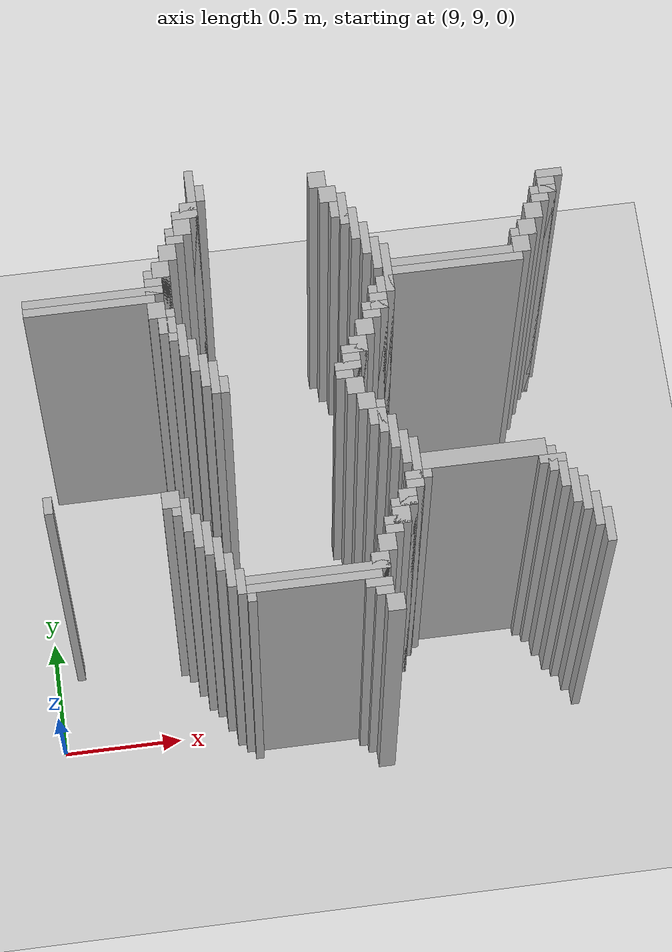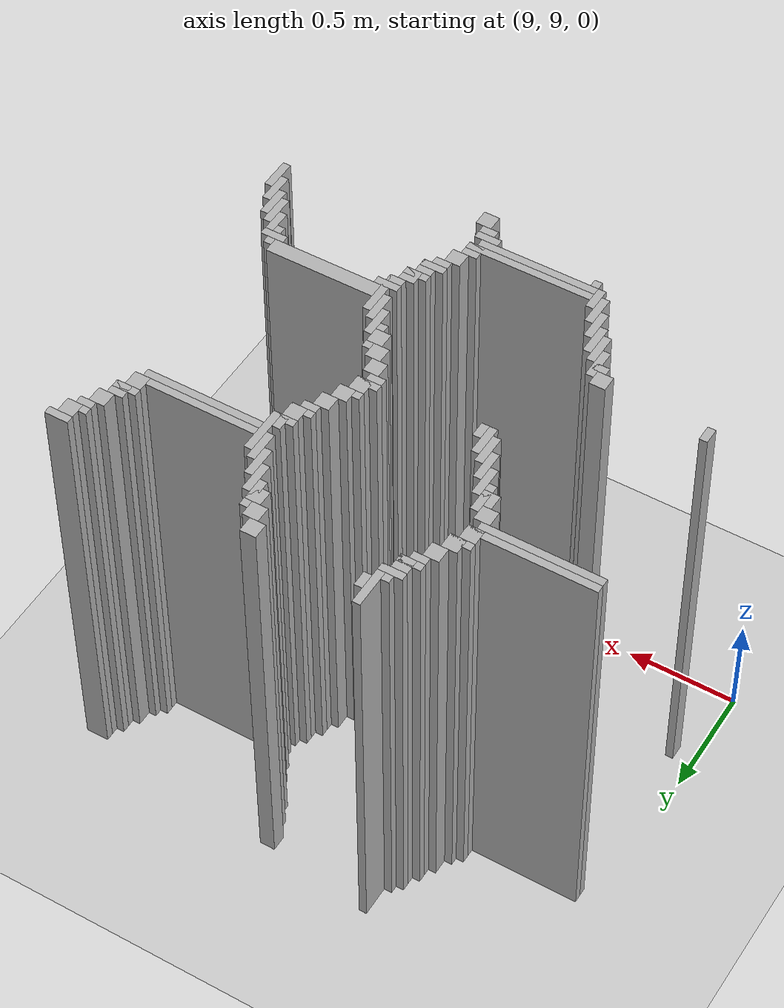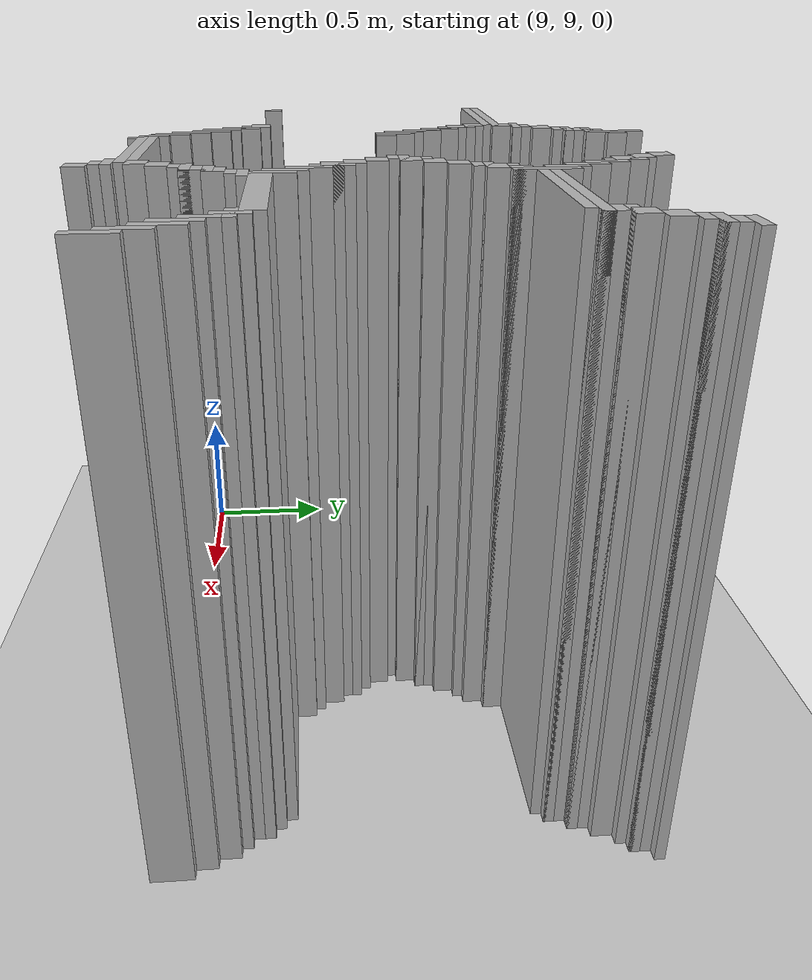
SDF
<sdf version="1.6">
 <world name="slam_world">
  <model name="ground_plane">
   <static>true</static>
   <link name="link">
    <collision name="collision">
     <geometry><plane><normal>0 0 1</normal><size>100 100</size></plane></geometry>
    </collision>
    <visual name="visual">
     <geometry><plane><normal>0 0 1</normal><size>100 100</size></plane></geometry>
     <material>
      <ambient>0.8 0.8 0.8 1</ambient>
      <diffuse>0.8 0.8 0.8 1</diffuse>
      <specular>0.8 0.8 0.8 1</specular>
     </material>
    </visual>
   </link>
  </model>
  <model name="wall_2202">
   <static>true</static>
   <pose>9.796983758700696 10.614849187935034 1.0 0 0 0</pose>
   <link name="link">
    <collision name="collision">
     <geometry><box><size>0.03480278422273782 0.2088167053364269 2.0</size></box></geometry>
    </collision>
    <visual name="visual">
     <geometry><box><size>0.03480278422273782 0.2088167053364269 2.0</size></box></geometry>
     <material><ambient>0.5 0.5 0.5 1</ambient><diffuse>0.7 0.7 0.7 1</diffuse></material>
    </visual>
   </link>
  </model>
  <model name="wall_2227">
   <static>true</static>
   <pose>9.831786542923433 10.614849187935034 1.0 0 0 0</pose>
   <link name="link">
    <collision name="collision">
     <geometry><box><size>0.03480278422273782 0.06960556844547564 2.0</size></box></geometry>
    </collision>
    <visual name="visual">
     <geometry><box><size>0.03480278422273782 0.06960556844547564 2.0</size></box></geometry>
     <material><ambient>0.5 0.5 0.5 1</ambient><diffuse>0.7 0.7 0.7 1</diffuse></material>
    </visual>
   </link>
  </model>
  <model name="wall_2228">
   <static>true</static>
   <pose>10.301624129930394 10.614849187935034 1.0 0 0 0</pose>
   <link name="link">
    <collision name="collision">
     <geometry><box><size>0.06960556844547564 0.06960556844547564 2.0</size></box></geometry>
    </collision>
    <visual name="visual">
     <geometry><box><size>0.06960556844547564 0.06960556844547564 2.0</size></box></geometry>
     <material><ambient>0.5 0.5 0.5 1</ambient><diffuse>0.7 0.7 0.7 1</diffuse></material>
    </visual>
   </link>
  </model>
  <model name="wall_2246">
   <static>true</static>
   <pose>9.779582366589327 10.54524361948956 1.0 0 0 0</pose>
   <link name="link">
    <collision name="collision">
     <geometry><box><size>0.06960556844547564 0.06960556844547564 2.0</size></box></geometry>
    </collision>
    <visual name="visual">
     <geometry><box><size>0.06960556844547564 0.06960556844547564 2.0</size></box></geometry>
     <material><ambient>0.5 0.5 0.5 1</ambient><diffuse>0.7 0.7 0.7 1</diffuse></material>
    </visual>
   </link>
  </model>
  <model name="wall_2247">
   <static>true</static>
   <pose>10.336426914153131 10.54524361948956 1.0 0 0 0</pose>
   <link name="link">
    <collision name="collision">
     <geometry><box><size>0.06960556844547564 0.06960556844547564 2.0</size></box></geometry>
    </collision>
    <visual name="visual">
     <geometry><box><size>0.06960556844547564 0.06960556844547564 2.0</size></box></geometry>
     <material><ambient>0.5 0.5 0.5 1</ambient><diffuse>0.7 0.7 0.7 1</diffuse></material>
    </visual>
   </link>
  </model>
  <model name="wall_2263">
   <static>true</static>
   <pose>9.762180974477959 10.52784222737819 1.0 0 0 0</pose>
   <link name="link">
    <collision name="collision">
     <geometry><box><size>0.10440835266821345 0.03480278422273782 2.0</size></box></geometry>
    </collision>
    <visual name="visual">
     <geometry><box><size>0.10440835266821345 0.03480278422273782 2.0</size></box></geometry>
     <material><ambient>0.5 0.5 0.5 1</ambient><diffuse>0.7 0.7 0.7 1</diffuse></material>
    </visual>
   </link>
  </model>
  <model name="wall_2264">
   <static>true</static>
   <pose>10.38863109048724 10.475638051044083 1.0 0 0 0</pose>
   <link name="link">
    <collision name="collision">
     <geometry><box><size>0.03480278422273782 0.13921113689095127 2.0</size></box></geometry>
    </collision>
    <visual name="visual">
     <geometry><box><size>0.03480278422273782 0.13921113689095127 2.0</size></box></geometry>
     <material><ambient>0.5 0.5 0.5 1</ambient><diffuse>0.7 0.7 0.7 1</diffuse></material>
    </visual>
   </link>
  </model>
  <model name="wall_2265">
   <static>true</static>
   <pose>11.223897911832946 10.52784222737819 1.0 0 0 0</pose>
   <link name="link">
    <collision name="collision">
     <geometry><box><size>0.10440835266821345 0.03480278422273782 2.0</size></box></geometry>
    </collision>
    <visual name="visual">
     <geometry><box><size>0.10440835266821345 0.03480278422273782 2.0</size></box></geometry>
     <material><ambient>0.5 0.5 0.5 1</ambient><diffuse>0.7 0.7 0.7 1</diffuse></material>
    </visual>
   </link>
  </model>
  <model name="wall_2280">
   <static>true</static>
   <pose>9.744779582366588 10.475638051044083 1.0 0 0 0</pose>
   <link name="link">
    <collision name="collision">
     <geometry><box><size>0.06960556844547564 0.06960556844547564 2.0</size></box></geometry>
    </collision>
    <visual name="visual">
     <geometry><box><size>0.06960556844547564 0.06960556844547564 2.0</size></box></geometry>
     <material><ambient>0.5 0.5 0.5 1</ambient><diffuse>0.7 0.7 0.7 1</diffuse></material>
    </visual>
   </link>
  </model>
  <model name="wall_2281">
   <static>true</static>
   <pose>10.37122969837587 10.475638051044083 1.0 0 0 0</pose>
   <link name="link">
    <collision name="collision">
     <geometry><box><size>0.06960556844547564 0.06960556844547564 2.0</size></box></geometry>
    </collision>
    <visual name="visual">
     <geometry><box><size>0.06960556844547564 0.06960556844547564 2.0</size></box></geometry>
     <material><ambient>0.5 0.5 0.5 1</ambient><diffuse>0.7 0.7 0.7 1</diffuse></material>
    </visual>
   </link>
  </model>
  <model name="wall_2282">
   <static>true</static>
   <pose>11.206496519721577 10.475638051044083 1.0 0 0 0</pose>
   <link name="link">
    <collision name="collision">
     <geometry><box><size>0.06960556844547564 0.06960556844547564 2.0</size></box></geometry>
    </collision>
    <visual name="visual">
     <geometry><box><size>0.06960556844547564 0.06960556844547564 2.0</size></box></geometry>
     <material><ambient>0.5 0.5 0.5 1</ambient><diffuse>0.7 0.7 0.7 1</diffuse></material>
    </visual>
   </link>
  </model>
  <model name="wall_2297">
   <static>true</static>
   <pose>9.72737819025522 10.458236658932714 1.0 0 0 0</pose>
   <link name="link">
    <collision name="collision">
     <geometry><box><size>0.10440835266821345 0.03480278422273782 2.0</size></box></geometry>
    </collision>
    <visual name="visual">
     <geometry><box><size>0.10440835266821345 0.03480278422273782 2.0</size></box></geometry>
     <material><ambient>0.5 0.5 0.5 1</ambient><diffuse>0.7 0.7 0.7 1</diffuse></material>
    </visual>
   </link>
  </model>
  <model name="wall_2298">
   <static>true</static>
   <pose>10.423433874709977 10.406032482598608 1.0 0 0 0</pose>
   <link name="link">
    <collision name="collision">
     <geometry><box><size>0.03480278422273782 0.13921113689095127 2.0</size></box></geometry>
    </collision>
    <visual name="visual">
     <geometry><box><size>0.03480278422273782 0.13921113689095127 2.0</size></box></geometry>
     <material><ambient>0.5 0.5 0.5 1</ambient><diffuse>0.7 0.7 0.7 1</diffuse></material>
    </visual>
   </link>
  </model>
  <model name="wall_2299">
   <static>true</static>
   <pose>11.189095127610209 10.458236658932714 1.0 0 0 0</pose>
   <link name="link">
    <collision name="collision">
     <geometry><box><size>0.10440835266821345 0.03480278422273782 2.0</size></box></geometry>
    </collision>
    <visual name="visual">
     <geometry><box><size>0.10440835266821345 0.03480278422273782 2.0</size></box></geometry>
     <material><ambient>0.5 0.5 0.5 1</ambient><diffuse>0.7 0.7 0.7 1</diffuse></material>
    </visual>
   </link>
  </model>
  <model name="wall_2308">
   <static>true</static>
   <pose>9.70997679814385 10.423433874709977 1.0 0 0 0</pose>
   <link name="link">
    <collision name="collision">
     <geometry><box><size>0.06960556844547564 0.03480278422273782 2.0</size></box></geometry>
    </collision>
    <visual name="visual">
     <geometry><box><size>0.06960556844547564 0.03480278422273782 2.0</size></box></geometry>
     <material><ambient>0.5 0.5 0.5 1</ambient><diffuse>0.7 0.7 0.7 1</diffuse></material>
    </visual>
   </link>
  </model>
  <model name="wall_2309">
   <static>true</static>
   <pose>11.17169373549884 10.423433874709977 1.0 0 0 0</pose>
   <link name="link">
    <collision name="collision">
     <geometry><box><size>0.06960556844547564 0.03480278422273782 2.0</size></box></geometry>
    </collision>
    <visual name="visual">
     <geometry><box><size>0.06960556844547564 0.03480278422273782 2.0</size></box></geometry>
     <material><ambient>0.5 0.5 0.5 1</ambient><diffuse>0.7 0.7 0.7 1</diffuse></material>
    </visual>
   </link>
  </model>
  <model name="wall_2322">
   <static>true</static>
   <pose>9.675174013921113 10.37122969837587 1.0 0 0 0</pose>
   <link name="link">
    <collision name="collision">
     <geometry><box><size>0.06960556844547564 0.06960556844547564 2.0</size></box></geometry>
    </collision>
    <visual name="visual">
     <geometry><box><size>0.06960556844547564 0.06960556844547564 2.0</size></box></geometry>
     <material><ambient>0.5 0.5 0.5 1</ambient><diffuse>0.7 0.7 0.7 1</diffuse></material>
    </visual>
   </link>
  </model>
  <model name="wall_2323">
   <static>true</static>
   <pose>10.458236658932714 10.336426914153131 1.0 0 0 0</pose>
   <link name="link">
    <collision name="collision">
     <geometry><box><size>0.03480278422273782 0.13921113689095127 2.0</size></box></geometry>
    </collision>
    <visual name="visual">
     <geometry><box><size>0.03480278422273782 0.13921113689095127 2.0</size></box></geometry>
     <material><ambient>0.5 0.5 0.5 1</ambient><diffuse>0.7 0.7 0.7 1</diffuse></material>
    </visual>
   </link>
  </model>
  <model name="wall_2324">
   <static>true</static>
   <pose>11.1368909512761 10.37122969837587 1.0 0 0 0</pose>
   <link name="link">
    <collision name="collision">
     <geometry><box><size>0.06960556844547564 0.06960556844547564 2.0</size></box></geometry>
    </collision>
    <visual name="visual">
     <geometry><box><size>0.06960556844547564 0.06960556844547564 2.0</size></box></geometry>
     <material><ambient>0.5 0.5 0.5 1</ambient><diffuse>0.7 0.7 0.7 1</diffuse></material>
    </visual>
   </link>
  </model>
  <model name="wall_2339">
   <static>true</static>
   <pose>9.640371229698376 10.301624129930394 1.0 0 0 0</pose>
   <link name="link">
    <collision name="collision">
     <geometry><box><size>0.06960556844547564 0.06960556844547564 2.0</size></box></geometry>
    </collision>
    <visual name="visual">
     <geometry><box><size>0.06960556844547564 0.06960556844547564 2.0</size></box></geometry>
     <material><ambient>0.5 0.5 0.5 1</ambient><diffuse>0.7 0.7 0.7 1</diffuse></material>
    </visual>
   </link>
  </model>
  <model name="wall_2340">
   <static>true</static>
   <pose>10.493039443155451 10.266821345707656 1.0 0 0 0</pose>
   <link name="link">
    <collision name="collision">
     <geometry><box><size>0.03480278422273782 0.13921113689095127 2.0</size></box></geometry>
    </collision>
    <visual name="visual">
     <geometry><box><size>0.03480278422273782 0.13921113689095127 2.0</size></box></geometry>
     <material><ambient>0.5 0.5 0.5 1</ambient><diffuse>0.7 0.7 0.7 1</diffuse></material>
    </visual>
   </link>
  </model>
  <model name="wall_2341">
   <static>true</static>
   <pose>11.102088167053363 10.301624129930394 1.0 0 0 0</pose>
   <link name="link">
    <collision name="collision">
     <geometry><box><size>0.06960556844547564 0.06960556844547564 2.0</size></box></geometry>
    </collision>
    <visual name="visual">
     <geometry><box><size>0.06960556844547564 0.06960556844547564 2.0</size></box></geometry>
     <material><ambient>0.5 0.5 0.5 1</ambient><diffuse>0.7 0.7 0.7 1</diffuse></material>
    </visual>
   </link>
  </model>
  <model name="wall_2356">
   <static>true</static>
   <pose>9.622969837587007 10.284222737819025 1.0 0 0 0</pose>
   <link name="link">
    <collision name="collision">
     <geometry><box><size>0.10440835266821345 0.03480278422273782 2.0</size></box></geometry>
    </collision>
    <visual name="visual">
     <geometry><box><size>0.10440835266821345 0.03480278422273782 2.0</size></box></geometry>
     <material><ambient>0.5 0.5 0.5 1</ambient><diffuse>0.7 0.7 0.7 1</diffuse></material>
    </visual>
   </link>
  </model>
  <model name="wall_2357">
   <static>true</static>
   <pose>10.52784222737819 10.19721577726218 1.0 0 0 0</pose>
   <link name="link">
    <collision name="collision">
     <geometry><box><size>0.03480278422273782 0.2088167053364269 2.0</size></box></geometry>
    </collision>
    <visual name="visual">
     <geometry><box><size>0.03480278422273782 0.2088167053364269 2.0</size></box></geometry>
     <material><ambient>0.5 0.5 0.5 1</ambient><diffuse>0.7 0.7 0.7 1</diffuse></material>
    </visual>
   </link>
  </model>
  <model name="wall_2358">
   <static>true</static>
   <pose>11.084686774941995 10.284222737819025 1.0 0 0 0</pose>
   <link name="link">
    <collision name="collision">
     <geometry><box><size>0.10440835266821345 0.03480278422273782 2.0</size></box></geometry>
    </collision>
    <visual name="visual">
     <geometry><box><size>0.10440835266821345 0.03480278422273782 2.0</size></box></geometry>
     <material><ambient>0.5 0.5 0.5 1</ambient><diffuse>0.7 0.7 0.7 1</diffuse></material>
    </visual>
   </link>
  </model>
  <model name="wall_2367">
   <static>true</static>
   <pose>9.605568445475638 10.232018561484919 1.0 0 0 0</pose>
   <link name="link">
    <collision name="collision">
     <geometry><box><size>0.06960556844547564 0.06960556844547564 2.0</size></box></geometry>
    </collision>
    <visual name="visual">
     <geometry><box><size>0.06960556844547564 0.06960556844547564 2.0</size></box></geometry>
     <material><ambient>0.5 0.5 0.5 1</ambient><diffuse>0.7 0.7 0.7 1</diffuse></material>
    </visual>
   </link>
  </model>
  <model name="wall_2368">
   <static>true</static>
   <pose>11.067285382830626 10.232018561484919 1.0 0 0 0</pose>
   <link name="link">
    <collision name="collision">
     <geometry><box><size>0.06960556844547564 0.06960556844547564 2.0</size></box></geometry>
    </collision>
    <visual name="visual">
     <geometry><box><size>0.06960556844547564 0.06960556844547564 2.0</size></box></geometry>
     <material><ambient>0.5 0.5 0.5 1</ambient><diffuse>0.7 0.7 0.7 1</diffuse></material>
    </visual>
   </link>
  </model>
  <model name="wall_2377">
   <static>true</static>
   <pose>9.361948955916473 10.214617169373549 1.0 0 0 0</pose>
   <link name="link">
    <collision name="collision">
     <geometry><box><size>0.5568445475638051 0.03480278422273782 2.0</size></box></geometry>
    </collision>
    <visual name="visual">
     <geometry><box><size>0.5568445475638051 0.03480278422273782 2.0</size></box></geometry>
     <material><ambient>0.5 0.5 0.5 1</ambient><diffuse>0.7 0.7 0.7 1</diffuse></material>
    </visual>
   </link>
  </model>
  <model name="wall_2378">
   <static>true</static>
   <pose>10.82366589327146 10.214617169373549 1.0 0 0 0</pose>
   <link name="link">
    <collision name="collision">
     <geometry><box><size>0.5568445475638051 0.03480278422273782 2.0</size></box></geometry>
    </collision>
    <visual name="visual">
     <geometry><box><size>0.5568445475638051 0.03480278422273782 2.0</size></box></geometry>
     <material><ambient>0.5 0.5 0.5 1</ambient><diffuse>0.7 0.7 0.7 1</diffuse></material>
    </visual>
   </link>
  </model>
  <model name="wall_2388">
   <static>true</static>
   <pose>9.344547563805104 10.179814385150811 1.0 0 0 0</pose>
   <link name="link">
    <collision name="collision">
     <geometry><box><size>0.5220417633410672 0.03480278422273782 2.0</size></box></geometry>
    </collision>
    <visual name="visual">
     <geometry><box><size>0.5220417633410672 0.03480278422273782 2.0</size></box></geometry>
     <material><ambient>0.5 0.5 0.5 1</ambient><diffuse>0.7 0.7 0.7 1</diffuse></material>
    </visual>
   </link>
  </model>
  <model name="wall_2389">
   <static>true</static>
   <pose>10.806264501160092 10.179814385150811 1.0 0 0 0</pose>
   <link name="link">
    <collision name="collision">
     <geometry><box><size>0.5220417633410672 0.03480278422273782 2.0</size></box></geometry>
    </collision>
    <visual name="visual">
     <geometry><box><size>0.5220417633410672 0.03480278422273782 2.0</size></box></geometry>
     <material><ambient>0.5 0.5 0.5 1</ambient><diffuse>0.7 0.7 0.7 1</diffuse></material>
    </visual>
   </link>
  </model>
  <model name="wall_2400">
   <static>true</static>
   <pose>9.605568445475638 10.127610208816705 1.0 0 0 0</pose>
   <link name="link">
    <collision name="collision">
     <geometry><box><size>0.06960556844547564 0.06960556844547564 2.0</size></box></geometry>
    </collision>
    <visual name="visual">
     <geometry><box><size>0.06960556844547564 0.06960556844547564 2.0</size></box></geometry>
     <material><ambient>0.5 0.5 0.5 1</ambient><diffuse>0.7 0.7 0.7 1</diffuse></material>
    </visual>
   </link>
  </model>
  <model name="wall_2401">
   <static>true</static>
   <pose>10.51044083526682 10.127610208816705 1.0 0 0 0</pose>
   <link name="link">
    <collision name="collision">
     <geometry><box><size>0.06960556844547564 0.06960556844547564 2.0</size></box></geometry>
    </collision>
    <visual name="visual">
     <geometry><box><size>0.06960556844547564 0.06960556844547564 2.0</size></box></geometry>
     <material><ambient>0.5 0.5 0.5 1</ambient><diffuse>0.7 0.7 0.7 1</diffuse></material>
    </visual>
   </link>
  </model>
  <model name="wall_2416">
   <static>true</static>
   <pose>9.657772621809745 10.058004640371228 1.0 0 0 0</pose>
   <link name="link">
    <collision name="collision">
     <geometry><box><size>0.03480278422273782 0.13921113689095127 2.0</size></box></geometry>
    </collision>
    <visual name="visual">
     <geometry><box><size>0.03480278422273782 0.13921113689095127 2.0</size></box></geometry>
     <material><ambient>0.5 0.5 0.5 1</ambient><diffuse>0.7 0.7 0.7 1</diffuse></material>
    </visual>
   </link>
  </model>
  <model name="wall_2417">
   <static>true</static>
   <pose>10.493039443155451 10.110208816705336 1.0 0 0 0</pose>
   <link name="link">
    <collision name="collision">
     <geometry><box><size>0.10440835266821345 0.03480278422273782 2.0</size></box></geometry>
    </collision>
    <visual name="visual">
     <geometry><box><size>0.10440835266821345 0.03480278422273782 2.0</size></box></geometry>
     <material><ambient>0.5 0.5 0.5 1</ambient><diffuse>0.7 0.7 0.7 1</diffuse></material>
    </visual>
   </link>
  </model>
  <model name="wall_2432">
   <static>true</static>
   <pose>9.640371229698376 10.058004640371228 1.0 0 0 0</pose>
   <link name="link">
    <collision name="collision">
     <geometry><box><size>0.06960556844547564 0.06960556844547564 2.0</size></box></geometry>
    </collision>
    <visual name="visual">
     <geometry><box><size>0.06960556844547564 0.06960556844547564 2.0</size></box></geometry>
     <material><ambient>0.5 0.5 0.5 1</ambient><diffuse>0.7 0.7 0.7 1</diffuse></material>
    </visual>
   </link>
  </model>
  <model name="wall_2433">
   <static>true</static>
   <pose>10.475638051044083 10.058004640371228 1.0 0 0 0</pose>
   <link name="link">
    <collision name="collision">
     <geometry><box><size>0.06960556844547564 0.06960556844547564 2.0</size></box></geometry>
    </collision>
    <visual name="visual">
     <geometry><box><size>0.06960556844547564 0.06960556844547564 2.0</size></box></geometry>
     <material><ambient>0.5 0.5 0.5 1</ambient><diffuse>0.7 0.7 0.7 1</diffuse></material>
    </visual>
   </link>
  </model>
  <model name="wall_2448">
   <static>true</static>
   <pose>9.692575406032482 9.988399071925754 1.0 0 0 0</pose>
   <link name="link">
    <collision name="collision">
     <geometry><box><size>0.03480278422273782 0.13921113689095127 2.0</size></box></geometry>
    </collision>
    <visual name="visual">
     <geometry><box><size>0.03480278422273782 0.13921113689095127 2.0</size></box></geometry>
     <material><ambient>0.5 0.5 0.5 1</ambient><diffuse>0.7 0.7 0.7 1</diffuse></material>
    </visual>
   </link>
  </model>
  <model name="wall_2449">
   <static>true</static>
   <pose>10.458236658932714 10.04060324825986 1.0 0 0 0</pose>
   <link name="link">
    <collision name="collision">
     <geometry><box><size>0.10440835266821345 0.03480278422273782 2.0</size></box></geometry>
    </collision>
    <visual name="visual">
     <geometry><box><size>0.10440835266821345 0.03480278422273782 2.0</size></box></geometry>
     <material><ambient>0.5 0.5 0.5 1</ambient><diffuse>0.7 0.7 0.7 1</diffuse></material>
    </visual>
   </link>
  </model>
  <model name="wall_2460">
   <static>true</static>
   <pose>10.440835266821345 10.005800464037122 1.0 0 0 0</pose>
   <link name="link">
    <collision name="collision">
     <geometry><box><size>0.06960556844547564 0.03480278422273782 2.0</size></box></geometry>
    </collision>
    <visual name="visual">
     <geometry><box><size>0.06960556844547564 0.03480278422273782 2.0</size></box></geometry>
     <material><ambient>0.5 0.5 0.5 1</ambient><diffuse>0.7 0.7 0.7 1</diffuse></material>
    </visual>
   </link>
  </model>
  <model name="wall_2473">
   <static>true</static>
   <pose>9.72737819025522 9.918793503480279 1.0 0 0 0</pose>
   <link name="link">
    <collision name="collision">
     <geometry><box><size>0.03480278422273782 0.13921113689095127 2.0</size></box></geometry>
    </collision>
    <visual name="visual">
     <geometry><box><size>0.03480278422273782 0.13921113689095127 2.0</size></box></geometry>
     <material><ambient>0.5 0.5 0.5 1</ambient><diffuse>0.7 0.7 0.7 1</diffuse></material>
    </visual>
   </link>
  </model>
  <model name="wall_2474">
   <static>true</static>
   <pose>10.406032482598608 9.953596287703016 1.0 0 0 0</pose>
   <link name="link">
    <collision name="collision">
     <geometry><box><size>0.06960556844547564 0.06960556844547564 2.0</size></box></geometry>
    </collision>
    <visual name="visual">
     <geometry><box><size>0.06960556844547564 0.06960556844547564 2.0</size></box></geometry>
     <material><ambient>0.5 0.5 0.5 1</ambient><diffuse>0.7 0.7 0.7 1</diffuse></material>
    </visual>
   </link>
  </model>
  <model name="wall_2489">
   <static>true</static>
   <pose>9.762180974477959 9.849187935034802 1.0 0 0 0</pose>
   <link name="link">
    <collision name="collision">
     <geometry><box><size>0.03480278422273782 0.13921113689095127 2.0</size></box></geometry>
    </collision>
    <visual name="visual">
     <geometry><box><size>0.03480278422273782 0.13921113689095127 2.0</size></box></geometry>
     <material><ambient>0.5 0.5 0.5 1</ambient><diffuse>0.7 0.7 0.7 1</diffuse></material>
    </visual>
   </link>
  </model>
  <model name="wall_2490">
   <static>true</static>
   <pose>10.37122969837587 9.88399071925754 1.0 0 0 0</pose>
   <link name="link">
    <collision name="collision">
     <geometry><box><size>0.06960556844547564 0.06960556844547564 2.0</size></box></geometry>
    </collision>
    <visual name="visual">
     <geometry><box><size>0.06960556844547564 0.06960556844547564 2.0</size></box></geometry>
     <material><ambient>0.5 0.5 0.5 1</ambient><diffuse>0.7 0.7 0.7 1</diffuse></material>
    </visual>
   </link>
  </model>
  <model name="wall_2505">
   <static>true</static>
   <pose>9.796983758700696 9.814385150812065 1.0 0 0 0</pose>
   <link name="link">
    <collision name="collision">
     <geometry><box><size>0.03480278422273782 0.13921113689095127 2.0</size></box></geometry>
    </collision>
    <visual name="visual">
     <geometry><box><size>0.03480278422273782 0.13921113689095127 2.0</size></box></geometry>
     <material><ambient>0.5 0.5 0.5 1</ambient><diffuse>0.7 0.7 0.7 1</diffuse></material>
    </visual>
   </link>
  </model>
  <model name="wall_2506">
   <static>true</static>
   <pose>10.3538283062645 9.86658932714617 1.0 0 0 0</pose>
   <link name="link">
    <collision name="collision">
     <geometry><box><size>0.10440835266821345 0.03480278422273782 2.0</size></box></geometry>
    </collision>
    <visual name="visual">
     <geometry><box><size>0.10440835266821345 0.03480278422273782 2.0</size></box></geometry>
     <material><ambient>0.5 0.5 0.5 1</ambient><diffuse>0.7 0.7 0.7 1</diffuse></material>
    </visual>
   </link>
  </model>
  <model name="wall_2517">
   <static>true</static>
   <pose>10.336426914153131 9.814385150812065 1.0 0 0 0</pose>
   <link name="link">
    <collision name="collision">
     <geometry><box><size>0.06960556844547564 0.06960556844547564 2.0</size></box></geometry>
    </collision>
    <visual name="visual">
     <geometry><box><size>0.06960556844547564 0.06960556844547564 2.0</size></box></geometry>
     <material><ambient>0.5 0.5 0.5 1</ambient><diffuse>0.7 0.7 0.7 1</diffuse></material>
    </visual>
   </link>
  </model>
  <model name="wall_2528">
   <static>true</static>
   <pose>9.831786542923433 9.779582366589327 1.0 0 0 0</pose>
   <link name="link">
    <collision name="collision">
     <geometry><box><size>0.03480278422273782 0.06960556844547564 2.0</size></box></geometry>
    </collision>
    <visual name="visual">
     <geometry><box><size>0.03480278422273782 0.06960556844547564 2.0</size></box></geometry>
     <material><ambient>0.5 0.5 0.5 1</ambient><diffuse>0.7 0.7 0.7 1</diffuse></material>
    </visual>
   </link>
  </model>
  <model name="wall_2529">
   <static>true</static>
   <pose>10.319025522041763 9.796983758700696 1.0 0 0 0</pose>
   <link name="link">
    <collision name="collision">
     <geometry><box><size>0.10440835266821345 0.03480278422273782 2.0</size></box></geometry>
    </collision>
    <visual name="visual">
     <geometry><box><size>0.10440835266821345 0.03480278422273782 2.0</size></box></geometry>
     <material><ambient>0.5 0.5 0.5 1</ambient><diffuse>0.7 0.7 0.7 1</diffuse></material>
    </visual>
   </link>
  </model>
  <model name="wall_2540">
   <static>true</static>
   <pose>10.301624129930394 9.762180974477959 1.0 0 0 0</pose>
   <link name="link">
    <collision name="collision">
     <geometry><box><size>0.06960556844547564 0.03480278422273782 2.0</size></box></geometry>
    </collision>
    <visual name="visual">
     <geometry><box><size>0.06960556844547564 0.03480278422273782 2.0</size></box></geometry>
     <material><ambient>0.5 0.5 0.5 1</ambient><diffuse>0.7 0.7 0.7 1</diffuse></material>
    </visual>
   </link>
  </model>
  <model name="wall_2549">
   <static>true</static>
   <pose>10.336426914153131 9.70997679814385 1.0 0 0 0</pose>
   <link name="link">
    <collision name="collision">
     <geometry><box><size>0.06960556844547564 0.06960556844547564 2.0</size></box></geometry>
    </collision>
    <visual name="visual">
     <geometry><box><size>0.06960556844547564 0.06960556844547564 2.0</size></box></geometry>
     <material><ambient>0.5 0.5 0.5 1</ambient><diffuse>0.7 0.7 0.7 1</diffuse></material>
    </visual>
   </link>
  </model>
  <model name="wall_2566">
   <static>true</static>
   <pose>10.37122969837587 9.640371229698376 1.0 0 0 0</pose>
   <link name="link">
    <collision name="collision">
     <geometry><box><size>0.06960556844547564 0.06960556844547564 2.0</size></box></geometry>
    </collision>
    <visual name="visual">
     <geometry><box><size>0.06960556844547564 0.06960556844547564 2.0</size></box></geometry>
     <material><ambient>0.5 0.5 0.5 1</ambient><diffuse>0.7 0.7 0.7 1</diffuse></material>
    </visual>
   </link>
  </model>
  <model name="wall_2577">
   <static>true</static>
   <pose>10.423433874709977 9.5707656612529 1.0 0 0 0</pose>
   <link name="link">
    <collision name="collision">
     <geometry><box><size>0.03480278422273782 0.13921113689095127 2.0</size></box></geometry>
    </collision>
    <visual name="visual">
     <geometry><box><size>0.03480278422273782 0.13921113689095127 2.0</size></box></geometry>
     <material><ambient>0.5 0.5 0.5 1</ambient><diffuse>0.7 0.7 0.7 1</diffuse></material>
    </visual>
   </link>
  </model>
  <model name="wall_2588">
   <static>true</static>
   <pose>10.406032482598608 9.5707656612529 1.0 0 0 0</pose>
   <link name="link">
    <collision name="collision">
     <geometry><box><size>0.06960556844547564 0.06960556844547564 2.0</size></box></geometry>
    </collision>
    <visual name="visual">
     <geometry><box><size>0.06960556844547564 0.06960556844547564 2.0</size></box></geometry>
     <material><ambient>0.5 0.5 0.5 1</ambient><diffuse>0.7 0.7 0.7 1</diffuse></material>
    </visual>
   </link>
  </model>
  <model name="wall_2599">
   <static>true</static>
   <pose>10.458236658932714 9.501160092807424 1.0 0 0 0</pose>
   <link name="link">
    <collision name="collision">
     <geometry><box><size>0.03480278422273782 0.13921113689095127 2.0</size></box></geometry>
    </collision>
    <visual name="visual">
     <geometry><box><size>0.03480278422273782 0.13921113689095127 2.0</size></box></geometry>
     <material><ambient>0.5 0.5 0.5 1</ambient><diffuse>0.7 0.7 0.7 1</diffuse></material>
    </visual>
   </link>
  </model>
  <model name="wall_2613">
   <static>true</static>
   <pose>10.493039443155451 9.431554524361948 1.0 0 0 0</pose>
   <link name="link">
    <collision name="collision">
     <geometry><box><size>0.03480278422273782 0.13921113689095127 2.0</size></box></geometry>
    </collision>
    <visual name="visual">
     <geometry><box><size>0.03480278422273782 0.13921113689095127 2.0</size></box></geometry>
     <material><ambient>0.5 0.5 0.5 1</ambient><diffuse>0.7 0.7 0.7 1</diffuse></material>
    </visual>
   </link>
  </model>
  <model name="wall_2624">
   <static>true</static>
   <pose>10.52784222737819 9.361948955916473 1.0 0 0 0</pose>
   <link name="link">
    <collision name="collision">
     <geometry><box><size>0.03480278422273782 0.2088167053364269 2.0</size></box></geometry>
    </collision>
    <visual name="visual">
     <geometry><box><size>0.03480278422273782 0.2088167053364269 2.0</size></box></geometry>
     <material><ambient>0.5 0.5 0.5 1</ambient><diffuse>0.7 0.7 0.7 1</diffuse></material>
    </visual>
   </link>
  </model>
  <model name="wall_2639">
   <static>true</static>
   <pose>9.100928074245939 9.361948955916473 1.0 0 0 0</pose>
   <link name="link">
    <collision name="collision">
     <geometry><box><size>0.03480278422273782 0.06960556844547564 2.0</size></box></geometry>
    </collision>
    <visual name="visual">
     <geometry><box><size>0.03480278422273782 0.06960556844547564 2.0</size></box></geometry>
     <material><ambient>0.5 0.5 0.5 1</ambient><diffuse>0.7 0.7 0.7 1</diffuse></material>
    </visual>
   </link>
  </model>
  <model name="wall_2640">
   <static>true</static>
   <pose>10.788863109048723 9.361948955916473 1.0 0 0 0</pose>
   <link name="link">
    <collision name="collision">
     <geometry><box><size>0.4872389791183295 0.06960556844547564 2.0</size></box></geometry>
    </collision>
    <visual name="visual">
     <geometry><box><size>0.4872389791183295 0.06960556844547564 2.0</size></box></geometry>
     <material><ambient>0.5 0.5 0.5 1</ambient><diffuse>0.7 0.7 0.7 1</diffuse></material>
    </visual>
   </link>
  </model>
  <model name="wall_2651">
   <static>true</static>
   <pose>9.5707656612529 9.327146171693736 1.0 0 0 0</pose>
   <link name="link">
    <collision name="collision">
     <geometry><box><size>0.06960556844547564 0.06960556844547564 2.0</size></box></geometry>
    </collision>
    <visual name="visual">
     <geometry><box><size>0.06960556844547564 0.06960556844547564 2.0</size></box></geometry>
     <material><ambient>0.5 0.5 0.5 1</ambient><diffuse>0.7 0.7 0.7 1</diffuse></material>
    </visual>
   </link>
  </model>
  <model name="wall_2652">
   <static>true</static>
   <pose>11.049883990719257 9.309744779582367 1.0 0 0 0</pose>
   <link name="link">
    <collision name="collision">
     <geometry><box><size>0.03480278422273782 0.10440835266821345 2.0</size></box></geometry>
    </collision>
    <visual name="visual">
     <geometry><box><size>0.03480278422273782 0.10440835266821345 2.0</size></box></geometry>
     <material><ambient>0.5 0.5 0.5 1</ambient><diffuse>0.7 0.7 0.7 1</diffuse></material>
    </visual>
   </link>
  </model>
  <model name="wall_2666">
   <static>true</static>
   <pose>9.622969837587007 9.257540603248259 1.0 0 0 0</pose>
   <link name="link">
    <collision name="collision">
     <geometry><box><size>0.03480278422273782 0.13921113689095127 2.0</size></box></geometry>
    </collision>
    <visual name="visual">
     <geometry><box><size>0.03480278422273782 0.13921113689095127 2.0</size></box></geometry>
     <material><ambient>0.5 0.5 0.5 1</ambient><diffuse>0.7 0.7 0.7 1</diffuse></material>
    </visual>
   </link>
  </model>
  <model name="wall_2667">
   <static>true</static>
   <pose>10.52784222737819 9.309744779582367 1.0 0 0 0</pose>
   <link name="link">
    <collision name="collision">
     <geometry><box><size>0.10440835266821345 0.03480278422273782 2.0</size></box></geometry>
    </collision>
    <visual name="visual">
     <geometry><box><size>0.10440835266821345 0.03480278422273782 2.0</size></box></geometry>
     <material><ambient>0.5 0.5 0.5 1</ambient><diffuse>0.7 0.7 0.7 1</diffuse></material>
    </visual>
   </link>
  </model>
  <model name="wall_2668">
   <static>true</static>
   <pose>11.049883990719257 9.309744779582367 1.0 0 0 0</pose>
   <link name="link">
    <collision name="collision">
     <geometry><box><size>0.10440835266821345 0.03480278422273782 2.0</size></box></geometry>
    </collision>
    <visual name="visual">
     <geometry><box><size>0.10440835266821345 0.03480278422273782 2.0</size></box></geometry>
     <material><ambient>0.5 0.5 0.5 1</ambient><diffuse>0.7 0.7 0.7 1</diffuse></material>
    </visual>
   </link>
  </model>
  <model name="wall_2681">
   <static>true</static>
   <pose>9.605568445475638 9.274941995359628 1.0 0 0 0</pose>
   <link name="link">
    <collision name="collision">
     <geometry><box><size>0.06960556844547564 0.03480278422273782 2.0</size></box></geometry>
    </collision>
    <visual name="visual">
     <geometry><box><size>0.06960556844547564 0.03480278422273782 2.0</size></box></geometry>
     <material><ambient>0.5 0.5 0.5 1</ambient><diffuse>0.7 0.7 0.7 1</diffuse></material>
    </visual>
   </link>
  </model>
  <model name="wall_2682">
   <static>true</static>
   <pose>10.51044083526682 9.274941995359628 1.0 0 0 0</pose>
   <link name="link">
    <collision name="collision">
     <geometry><box><size>0.06960556844547564 0.03480278422273782 2.0</size></box></geometry>
    </collision>
    <visual name="visual">
     <geometry><box><size>0.06960556844547564 0.03480278422273782 2.0</size></box></geometry>
     <material><ambient>0.5 0.5 0.5 1</ambient><diffuse>0.7 0.7 0.7 1</diffuse></material>
    </visual>
   </link>
  </model>
  <model name="wall_2683">
   <static>true</static>
   <pose>11.084686774941995 9.24013921113689 1.0 0 0 0</pose>
   <link name="link">
    <collision name="collision">
     <geometry><box><size>0.03480278422273782 0.10440835266821345 2.0</size></box></geometry>
    </collision>
    <visual name="visual">
     <geometry><box><size>0.03480278422273782 0.10440835266821345 2.0</size></box></geometry>
     <material><ambient>0.5 0.5 0.5 1</ambient><diffuse>0.7 0.7 0.7 1</diffuse></material>
    </visual>
   </link>
  </model>
  <model name="wall_2697">
   <static>true</static>
   <pose>9.657772621809745 9.187935034802784 1.0 0 0 0</pose>
   <link name="link">
    <collision name="collision">
     <geometry><box><size>0.03480278422273782 0.13921113689095127 2.0</size></box></geometry>
    </collision>
    <visual name="visual">
     <geometry><box><size>0.03480278422273782 0.13921113689095127 2.0</size></box></geometry>
     <material><ambient>0.5 0.5 0.5 1</ambient><diffuse>0.7 0.7 0.7 1</diffuse></material>
    </visual>
   </link>
  </model>
  <model name="wall_2698">
   <static>true</static>
   <pose>10.475638051044083 9.222737819025522 1.0 0 0 0</pose>
   <link name="link">
    <collision name="collision">
     <geometry><box><size>0.06960556844547564 0.06960556844547564 2.0</size></box></geometry>
    </collision>
    <visual name="visual">
     <geometry><box><size>0.06960556844547564 0.06960556844547564 2.0</size></box></geometry>
     <material><ambient>0.5 0.5 0.5 1</ambient><diffuse>0.7 0.7 0.7 1</diffuse></material>
    </visual>
   </link>
  </model>
  <model name="wall_2699">
   <static>true</static>
   <pose>11.119489559164732 9.187935034802784 1.0 0 0 0</pose>
   <link name="link">
    <collision name="collision">
     <geometry><box><size>0.03480278422273782 0.13921113689095127 2.0</size></box></geometry>
    </collision>
    <visual name="visual">
     <geometry><box><size>0.03480278422273782 0.13921113689095127 2.0</size></box></geometry>
     <material><ambient>0.5 0.5 0.5 1</ambient><diffuse>0.7 0.7 0.7 1</diffuse></material>
    </visual>
   </link>
  </model>
  <model name="wall_2715">
   <static>true</static>
   <pose>9.692575406032482 9.153132250580047 1.0 0 0 0</pose>
   <link name="link">
    <collision name="collision">
     <geometry><box><size>0.03480278422273782 0.13921113689095127 2.0</size></box></geometry>
    </collision>
    <visual name="visual">
     <geometry><box><size>0.03480278422273782 0.13921113689095127 2.0</size></box></geometry>
     <material><ambient>0.5 0.5 0.5 1</ambient><diffuse>0.7 0.7 0.7 1</diffuse></material>
    </visual>
   </link>
  </model>
  <model name="wall_2716">
   <static>true</static>
   <pose>10.458236658932714 9.205336426914153 1.0 0 0 0</pose>
   <link name="link">
    <collision name="collision">
     <geometry><box><size>0.10440835266821345 0.03480278422273782 2.0</size></box></geometry>
    </collision>
    <visual name="visual">
     <geometry><box><size>0.10440835266821345 0.03480278422273782 2.0</size></box></geometry>
     <material><ambient>0.5 0.5 0.5 1</ambient><diffuse>0.7 0.7 0.7 1</diffuse></material>
    </visual>
   </link>
  </model>
  <model name="wall_2717">
   <static>true</static>
   <pose>11.154292343387471 9.153132250580047 1.0 0 0 0</pose>
   <link name="link">
    <collision name="collision">
     <geometry><box><size>0.03480278422273782 0.13921113689095127 2.0</size></box></geometry>
    </collision>
    <visual name="visual">
     <geometry><box><size>0.03480278422273782 0.13921113689095127 2.0</size></box></geometry>
     <material><ambient>0.5 0.5 0.5 1</ambient><diffuse>0.7 0.7 0.7 1</diffuse></material>
    </visual>
   </link>
  </model>
  <model name="wall_2730">
   <static>true</static>
   <pose>10.440835266821345 9.153132250580047 1.0 0 0 0</pose>
   <link name="link">
    <collision name="collision">
     <geometry><box><size>0.06960556844547564 0.06960556844547564 2.0</size></box></geometry>
    </collision>
    <visual name="visual">
     <geometry><box><size>0.06960556844547564 0.06960556844547564 2.0</size></box></geometry>
     <material><ambient>0.5 0.5 0.5 1</ambient><diffuse>0.7 0.7 0.7 1</diffuse></material>
    </visual>
   </link>
  </model>
  <model name="wall_2745">
   <static>true</static>
   <pose>9.72737819025522 9.08352668213457 1.0 0 0 0</pose>
   <link name="link">
    <collision name="collision">
     <geometry><box><size>0.03480278422273782 0.13921113689095127 2.0</size></box></geometry>
    </collision>
    <visual name="visual">
     <geometry><box><size>0.03480278422273782 0.13921113689095127 2.0</size></box></geometry>
     <material><ambient>0.5 0.5 0.5 1</ambient><diffuse>0.7 0.7 0.7 1</diffuse></material>
    </visual>
   </link>
  </model>
  <model name="wall_2746">
   <static>true</static>
   <pose>10.423433874709977 9.135730858468676 1.0 0 0 0</pose>
   <link name="link">
    <collision name="collision">
     <geometry><box><size>0.10440835266821345 0.03480278422273782 2.0</size></box></geometry>
    </collision>
    <visual name="visual">
     <geometry><box><size>0.10440835266821345 0.03480278422273782 2.0</size></box></geometry>
     <material><ambient>0.5 0.5 0.5 1</ambient><diffuse>0.7 0.7 0.7 1</diffuse></material>
    </visual>
   </link>
  </model>
  <model name="wall_2747">
   <static>true</static>
   <pose>11.189095127610209 9.08352668213457 1.0 0 0 0</pose>
   <link name="link">
    <collision name="collision">
     <geometry><box><size>0.03480278422273782 0.13921113689095127 2.0</size></box></geometry>
    </collision>
    <visual name="visual">
     <geometry><box><size>0.03480278422273782 0.13921113689095127 2.0</size></box></geometry>
     <material><ambient>0.5 0.5 0.5 1</ambient><diffuse>0.7 0.7 0.7 1</diffuse></material>
    </visual>
   </link>
  </model>
  <model name="wall_2759">
   <static>true</static>
   <pose>10.406032482598608 9.100928074245939 1.0 0 0 0</pose>
   <link name="link">
    <collision name="collision">
     <geometry><box><size>0.06960556844547564 0.03480278422273782 2.0</size></box></geometry>
    </collision>
    <visual name="visual">
     <geometry><box><size>0.06960556844547564 0.03480278422273782 2.0</size></box></geometry>
     <material><ambient>0.5 0.5 0.5 1</ambient><diffuse>0.7 0.7 0.7 1</diffuse></material>
    </visual>
   </link>
  </model>
  <model name="wall_2774">
   <static>true</static>
   <pose>9.762180974477959 9.013921113689095 1.0 0 0 0</pose>
   <link name="link">
    <collision name="collision">
     <geometry><box><size>0.03480278422273782 0.13921113689095127 2.0</size></box></geometry>
    </collision>
    <visual name="visual">
     <geometry><box><size>0.03480278422273782 0.13921113689095127 2.0</size></box></geometry>
     <material><ambient>0.5 0.5 0.5 1</ambient><diffuse>0.7 0.7 0.7 1</diffuse></material>
    </visual>
   </link>
  </model>
  <model name="wall_2775">
   <static>true</static>
   <pose>10.37122969837587 9.048723897911833 1.0 0 0 0</pose>
   <link name="link">
    <collision name="collision">
     <geometry><box><size>0.06960556844547564 0.06960556844547564 2.0</size></box></geometry>
    </collision>
    <visual name="visual">
     <geometry><box><size>0.06960556844547564 0.06960556844547564 2.0</size></box></geometry>
     <material><ambient>0.5 0.5 0.5 1</ambient><diffuse>0.7 0.7 0.7 1</diffuse></material>
    </visual>
   </link>
  </model>
  <model name="wall_2776">
   <static>true</static>
   <pose>11.223897911832946 9.013921113689095 1.0 0 0 0</pose>
   <link name="link">
    <collision name="collision">
     <geometry><box><size>0.03480278422273782 0.13921113689095127 2.0</size></box></geometry>
    </collision>
    <visual name="visual">
     <geometry><box><size>0.03480278422273782 0.13921113689095127 2.0</size></box></geometry>
     <material><ambient>0.5 0.5 0.5 1</ambient><diffuse>0.7 0.7 0.7 1</diffuse></material>
    </visual>
   </link>
  </model>
  <model name="wall_2792">
   <static>true</static>
   <pose>9.796983758700696 8.961716937354987 1.0 0 0 0</pose>
   <link name="link">
    <collision name="collision">
     <geometry><box><size>0.03480278422273782 0.10440835266821345 2.0</size></box></geometry>
    </collision>
    <visual name="visual">
     <geometry><box><size>0.03480278422273782 0.10440835266821345 2.0</size></box></geometry>
     <material><ambient>0.5 0.5 0.5 1</ambient><diffuse>0.7 0.7 0.7 1</diffuse></material>
    </visual>
   </link>
  </model>
  <model name="wall_2793">
   <static>true</static>
   <pose>10.336426914153131 8.979118329466356 1.0 0 0 0</pose>
   <link name="link">
    <collision name="collision">
     <geometry><box><size>0.06960556844547564 0.06960556844547564 2.0</size></box></geometry>
    </collision>
    <visual name="visual">
     <geometry><box><size>0.06960556844547564 0.06960556844547564 2.0</size></box></geometry>
     <material><ambient>0.5 0.5 0.5 1</ambient><diffuse>0.7 0.7 0.7 1</diffuse></material>
    </visual>
   </link>
  </model>
  <model name="wall_2807">
   <static>true</static>
   <pose>10.092807424593968 8.961716937354987 1.0 0 0 0</pose>
   <link name="link">
    <collision name="collision">
     <geometry><box><size>0.5568445475638051 0.03480278422273782 2.0</size></box></geometry>
    </collision>
    <visual name="visual">
     <geometry><box><size>0.5568445475638051 0.03480278422273782 2.0</size></box></geometry>
     <material><ambient>0.5 0.5 0.5 1</ambient><diffuse>0.7 0.7 0.7 1</diffuse></material>
    </visual>
   </link>
  </model>
  <model name="wall_2820">
   <static>true</static>
   <pose>10.075406032482599 8.92691415313225 1.0 0 0 0</pose>
   <link name="link">
    <collision name="collision">
     <geometry><box><size>0.5220417633410672 0.03480278422273782 2.0</size></box></geometry>
    </collision>
    <visual name="visual">
     <geometry><box><size>0.5220417633410672 0.03480278422273782 2.0</size></box></geometry>
     <material><ambient>0.5 0.5 0.5 1</ambient><diffuse>0.7 0.7 0.7 1</diffuse></material>
    </visual>
   </link>
  </model>
  <model name="wall_2836">
   <static>true</static>
   <pose>9.831786542923433 8.892111368909513 1.0 0 0 0</pose>
   <link name="link">
    <collision name="collision">
     <geometry><box><size>0.03480278422273782 0.03480278422273782 2.0</size></box></geometry>
    </collision>
    <visual name="visual">
     <geometry><box><size>0.03480278422273782 0.03480278422273782 2.0</size></box></geometry>
     <material><ambient>0.5 0.5 0.5 1</ambient><diffuse>0.7 0.7 0.7 1</diffuse></material>
    </visual>
   </link>
  </model>
  <model name="wall_2837">
   <static>true</static>
   <pose>10.319025522041763 8.892111368909513 1.0 0 0 0</pose>
   <link name="link">
    <collision name="collision">
     <geometry><box><size>0.10440835266821345 0.03480278422273782 2.0</size></box></geometry>
    </collision>
    <visual name="visual">
     <geometry><box><size>0.10440835266821345 0.03480278422273782 2.0</size></box></geometry>
     <material><ambient>0.5 0.5 0.5 1</ambient><diffuse>0.7 0.7 0.7 1</diffuse></material>
    </visual>
   </link>
  </model>
  <model name="wall_2853">
   <static>true</static>
   <pose>10.336426914153131 8.857308584686775 1.0 0 0 0</pose>
   <link name="link">
    <collision name="collision">
     <geometry><box><size>0.06960556844547564 0.03480278422273782 2.0</size></box></geometry>
    </collision>
    <visual name="visual">
     <geometry><box><size>0.06960556844547564 0.03480278422273782 2.0</size></box></geometry>
     <material><ambient>0.5 0.5 0.5 1</ambient><diffuse>0.7 0.7 0.7 1</diffuse></material>
    </visual>
   </link>
  </model>
  <model name="wall_2868">
   <static>true</static>
   <pose>10.37122969837587 8.805104408352667 1.0 0 0 0</pose>
   <link name="link">
    <collision name="collision">
     <geometry><box><size>0.06960556844547564 0.06960556844547564 2.0</size></box></geometry>
    </collision>
    <visual name="visual">
     <geometry><box><size>0.06960556844547564 0.06960556844547564 2.0</size></box></geometry>
     <material><ambient>0.5 0.5 0.5 1</ambient><diffuse>0.7 0.7 0.7 1</diffuse></material>
    </visual>
   </link>
  </model>
 </world>
</sdf>
